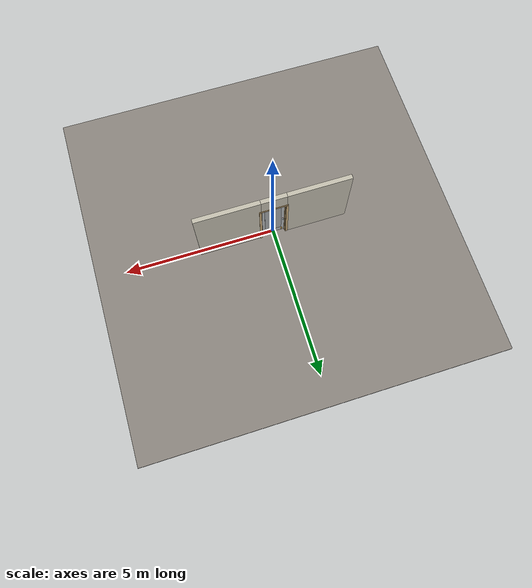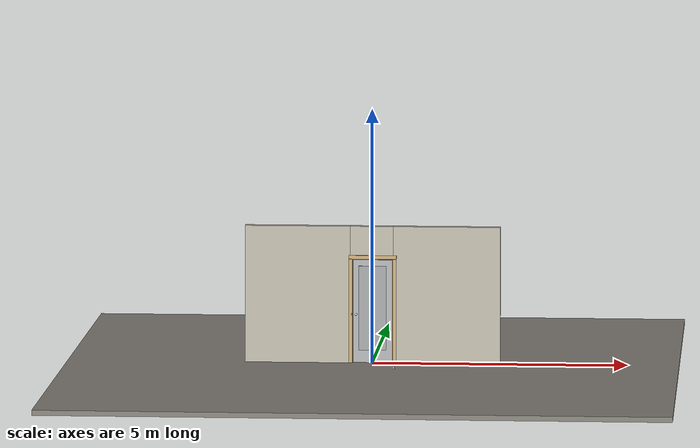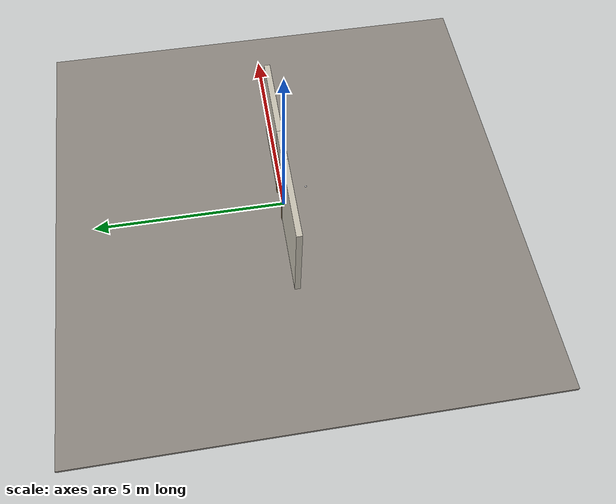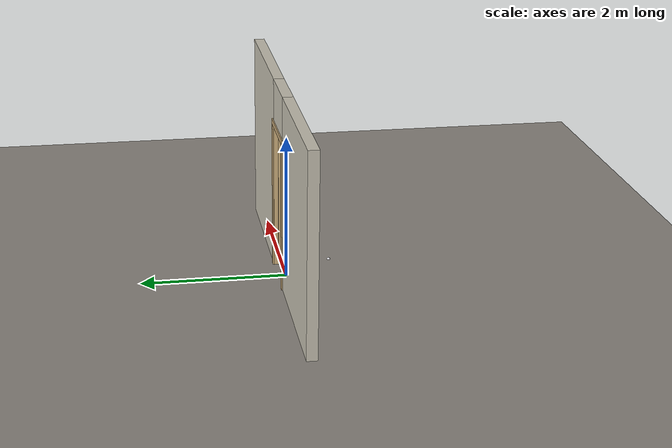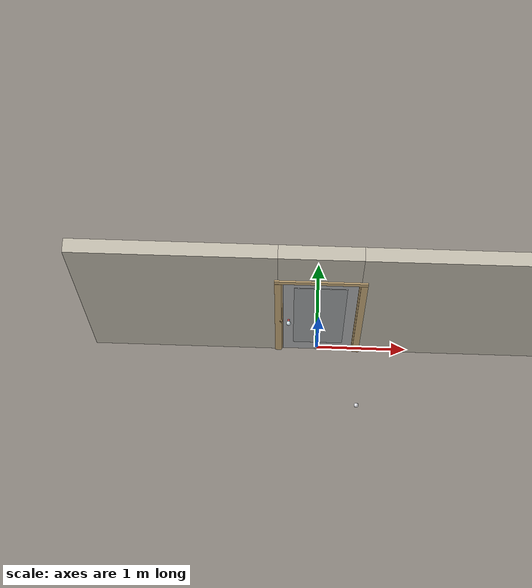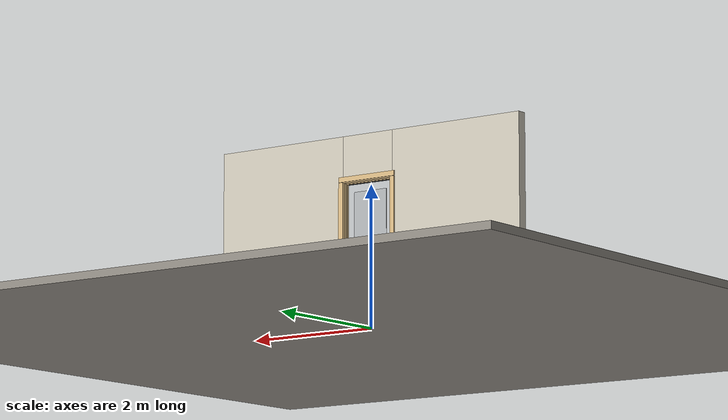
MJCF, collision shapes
<?xml version="1.0" ?>
<mujoco model="db0410_swing_single_full">
  <compiler angle="radian" meshdir="../../hardware" texturedir="../../textures" autolimits="true" inertiafromgeom="false"/>
  <option timestep="0.002" integrator="implicitfast" cone="elliptic" impratio="10" noslip_iterations="3">
    <flag multiccd="enable"/>
  </option>
  <size memory="16M"/>
  <default>
    <geom condim="4" solref="0.005 1" solimp="0.95 0.99 0.001"/>
    <joint solreflimit="0.005 1" solimplimit="0.95 0.99 0.001"/>
    <tendon solreflimit="0.005 1"/>
    <equality solref="0.002 1"/>
  </default>
  <visual>
    <headlight ambient="0.4 0.4 0.4" diffuse="0.7 0.7 0.7" specular="0.2 0.2 0.2"/>
    <quality shadowsize="4096"/>
    <map znear="0.01" zfar="60"/>
  </visual>
  <asset>
    <mesh name="hinge_2af0f4d6ca" file="hinge_2af0f4d6ca.obj"/>
    <mesh name="hinge_jamb_c0c0a62ada" file="hinge_jamb_c0c0a62ada.obj"/>
    <mesh name="knob_98a7916ed0" file="knob_98a7916ed0.obj"/>
    <material name="mat_floor" rgba="0.55 0.53 0.5 1" specular="0.2" shininess="0.15" reflectance="0"/>
    <material name="mat_wall" rgba="0.78 0.76 0.7 1" specular="0.2" shininess="0.1" reflectance="0"/>
    <material name="mat_leaf" rgba="0.72 0.73 0.74 1" specular="0.2" shininess="0.33" reflectance="0"/>
    <material name="mat_leaf_panel" rgba="0.662 0.672 0.681 1" specular="0.2" shininess="0.33" reflectance="0"/>
    <material name="mat_hinge" rgba="0.65 0.66 0.68 1" specular="0.74" shininess="0.5" reflectance="0.36"/>
    <material name="mat_op_glass_clear" rgba="0.85 0.92 0.95 0.25" specular="0.2" shininess="0.95" reflectance="0.1"/>
    <material name="mat_trim" rgba="0.85 0.66 0.3 1" specular="0.8" shininess="0.75" reflectance="0.4"/>
    <material name="mat_bolt" rgba="0.85 0.66 0.3 1" specular="0.8" shininess="0.75" reflectance="0.4"/>
    <material name="mat_frame" rgba="0.82 0.7 0.5 1" specular="0.2" shininess="0.45" reflectance="0"/>
    <material name="mat_seal" rgba="0.1 0.1 0.1 1" specular="0.2" shininess="0.1" reflectance="0"/>
    <material name="mat_kickdown" rgba="0.85 0.66 0.3 1" specular="0.8" shininess="0.75" reflectance="0.4"/>
    <material name="mat_kickdown_pad" rgba="0.92 0.92 0.9 1" specular="0.2" shininess="0.6" reflectance="0"/>
    <material name="mat_stop" rgba="0.9 0.9 0.92 1" specular="0.8" shininess="0.9" reflectance="0.4"/>
    <texture name="skybox" type="skybox" builtin="gradient" rgb1="0.6 0.7 0.85" rgb2="0.9 0.92 0.95" width="256" height="256"/>
  </asset>
  <worldbody>
    <light name="sun" pos="1.5 -2.5 4" dir="-0.3 0.5 -0.8" directional="true" diffuse="0.8 0.8 0.8" specular="0.3 0.3 0.3" castshadow="true"/>
    <light name="fill" pos="-1.5 2.5 3" dir="0.3 -0.5 -0.7" directional="true" diffuse="0.35 0.35 0.4" castshadow="false"/>
    <camera name="robot_view" pos="0 -2.498687 1.734312" xyaxes="1 0 0 0 0.26963 0.962964" fovy="52"/>
    <camera name="far_view" pos="0 2.585687 1.734312" xyaxes="-1 0 0 0 -0.26963 0.962964" fovy="52"/>
    <camera name="iso" pos="-1.932062 -2.091938 2.141063" xyaxes="0.741536 -0.670913 0 0.242917 0.268487 0.932151" fovy="46"/>
    <camera name="detail_handle" pos="-0.14 -0.867 1.245" xyaxes="0.97561 0.219512 0 -0.070934 0.315262 0.94635" fovy="38"/>
    <geom name="floor" type="box" size="6 6 0.05" pos="0 0 -0.05" material="mat_floor" group="0" contype="1" conaffinity="1" friction="0.8 0.005 0.0001" density="2400"/>
    <geom name="wall_left" type="box" size="1.033 0.0725 1.35" pos="-1.467 0.0435 1.35" material="mat_wall" group="0" contype="1" conaffinity="1" friction="0.6 0.005 0.0001" density="800"/>
    <geom name="wall_right" type="box" size="1.048 0.0725 1.35" pos="1.452 0.0435 1.35" material="mat_wall" group="0" contype="1" conaffinity="1" friction="0.6 0.005 0.0001" density="800"/>
    <geom name="wall_header" type="box" size="0.419 0.0725 0.303" pos="-0.015 0.0435 2.397" material="mat_wall" group="0" contype="1" conaffinity="1" friction="0.6 0.005 0.0001" density="800"/>
    <geom name="hinge_0_jamb" type="mesh" mesh="hinge_jamb_c0c0a62ada" pos="0.382 -0.029 0.259" quat="0 0 1 0" material="mat_hinge" group="1" contype="0" conaffinity="0" density="7850"/>
    <geom name="hinge_1_jamb" type="mesh" mesh="hinge_jamb_c0c0a62ada" pos="0.382 -0.029 1.025" quat="0 0 1 0" material="mat_hinge" group="1" contype="0" conaffinity="0" density="7850"/>
    <geom name="hinge_2_jamb" type="mesh" mesh="hinge_jamb_c0c0a62ada" pos="0.382 -0.029 1.861" quat="0 0 1 0" material="mat_hinge" group="1" contype="0" conaffinity="0" density="7850"/>
    <geom name="jamb_hinge" type="box" size="0.0095 0.0725 1.0225" pos="0.3945 0.0435 1.0225" material="mat_frame" group="0" contype="1" conaffinity="1" friction="0.6 0.005 0.0001" density="400"/>
    <geom name="strike_965_wall_n" type="box" size="0.0245 0.054075 0.0167" pos="-0.4095 0.061925 0.965" material="mat_frame" group="0" contype="1" conaffinity="1" friction="0.6 0.005 0.0001" density="400"/>
    <geom name="strike_965_wall_p" type="box" size="0.0245 0.008 0.0167" pos="-0.4095 -0.01585 0.965" material="mat_frame" group="0" contype="1" conaffinity="1" friction="0.6 0.005 0.0001" density="400"/>
    <geom name="strike_965_ramp" type="box" size="0.0245 0.01649 0.0167" pos="-0.414136 -0.028673 0.965" quat="0.977148 0 0 -0.212558" material="mat_frame" group="0" contype="1" conaffinity="1" friction="0.12 0.005 0.0001" density="400"/>
    <geom name="strike_965_back" type="box" size="0.01615 0.00785 0.0167" pos="-0.41785 0 0.965" material="mat_frame" group="0" contype="1" conaffinity="1" friction="0.6 0.005 0.0001" density="400"/>
    <geom name="jamb_strike_0" type="box" size="0.0245 0.0725 0.47415" pos="-0.4095 0.0435 0.47415" material="mat_frame" group="0" contype="1" conaffinity="1" friction="0.6 0.005 0.0001" density="400"/>
    <geom name="jamb_strike_1" type="box" size="0.0245 0.0725 0.53165" pos="-0.4095 0.0435 1.51335" material="mat_frame" group="0" contype="1" conaffinity="1" friction="0.6 0.005 0.0001" density="400"/>
    <geom name="jamb_head" type="box" size="0.419 0.0725 0.0095" pos="-0.015 0.0435 2.0545" material="mat_frame" group="0" contype="1" conaffinity="1" friction="0.6 0.005 0.0001" density="400"/>
    <geom name="head_stud" type="box" size="0.419 0.0725 0.015" pos="-0.015 0.0435 2.079" material="mat_wall" group="0" contype="1" conaffinity="1" friction="0.6 0.005 0.0001" density="500"/>
    <geom name="stop_hinge" type="box" size="0.0055 0.016 1.0225" pos="0.3795 0.0385 1.0225" material="mat_frame" group="0" contype="1" conaffinity="1" friction="0.6 0.005 0.0001" density="400"/>
    <geom name="stop_strike" type="box" size="0.0055 0.016 1.0225" pos="-0.3795 0.0385 1.0225" material="mat_frame" group="0" contype="1" conaffinity="1" friction="0.6 0.005 0.0001" density="400"/>
    <geom name="stop_head" type="box" size="0.385 0.016 0.0055" pos="0 0.0385 2.0395" material="mat_frame" group="0" contype="1" conaffinity="1" friction="0.6 0.005 0.0001" density="400"/>
    <geom name="seal_hinge" type="box" size="0.004 0.0015 1.0225" pos="0.382 0.0235 1.0225" material="mat_seal" group="1" contype="0" conaffinity="0" density="1100"/>
    <geom name="seal_strike" type="box" size="0.004 0.0015 1.0225" pos="-0.382 0.0235 1.0225" material="mat_seal" group="1" contype="0" conaffinity="0" density="1100"/>
    <geom name="seal_head" type="box" size="0.365 0.0015 0.008" pos="0 0.0235 2.033" material="mat_seal" group="1" contype="0" conaffinity="0" density="1100"/>
    <geom name="casing_l_n" type="box" size="0.035 0.008 1.032" pos="-0.434 -0.037 1.0225" material="mat_frame" group="2" contype="0" conaffinity="0" density="400"/>
    <geom name="casing_r_n" type="box" size="0.035 0.008 1.032" pos="0.434 -0.037 1.0225" material="mat_frame" group="2" contype="0" conaffinity="0" density="400"/>
    <geom name="casing_h_n" type="box" size="0.469 0.008 0.035" pos="0 -0.037 2.094" material="mat_frame" group="2" contype="0" conaffinity="0" density="400"/>
    <geom name="casing_l_p" type="box" size="0.035 0.008 1.032" pos="-0.434 0.124 1.0225" material="mat_frame" group="2" contype="0" conaffinity="0" density="400"/>
    <geom name="casing_r_p" type="box" size="0.035 0.008 1.032" pos="0.434 0.124 1.0225" material="mat_frame" group="2" contype="0" conaffinity="0" density="400"/>
    <geom name="casing_h_p" type="box" size="0.469 0.008 0.035" pos="0 0.124 2.094" material="mat_frame" group="2" contype="0" conaffinity="0" density="400"/>
    <geom name="floor_stop_dome" type="sphere" size="0.025" pos="0.458375 -0.672492 0" material="mat_stop" group="0" contype="1" conaffinity="1" friction="0.6 0.005 0.0001" density="7000"/>
    <site name="approach_point" pos="0 -1.5 0" quat="1 0 0 0" size="0.05" rgba="0.2 0.9 0.2 0.5" group="4"/>
    <site name="goal_point" pos="0 1.5 0" quat="1 0 0 0" size="0.05" rgba="0.2 0.9 0.2 0.5" group="4"/>
    <site name="door_plane_center" pos="0 0 1.0225" quat="1 0 0 0" size="0.02" rgba="0.2 0.9 0.2 0.5" group="4"/>
    <body name="leaf" pos="0.385 0 0">
      <inertial pos="-0.3877 0.000786 1.00377" mass="51.373454" quat="0.503992 -0.505854 -0.493006 -0.497041" diaginertia="2.572654469 18.222825973 20.775708539"/>
      <joint name="leaf_hinge" type="hinge" axis="0 0 1" pos="-0.003 -0.029 0" limited="true" range="0 1.658063" solreflimit="0.02 1" damping="0.173726" frictionloss="1.459348" armature="0.02"/>
      <geom name="leaf_slab" type="box" size="0.381 0.022 1.016" pos="-0.384 0 1.025" material="mat_leaf" group="0" contype="1" conaffinity="1" friction="0.4 0.005 0.0001" density="1"/>
      <geom name="leaf_panel_0_n" type="box" size="0.271 0.003 0.83344" pos="-0.384 -0.025 1.08596" material="mat_leaf_panel" group="1" contype="0" conaffinity="0" density="1"/>
      <geom name="leaf_panel_0_p" type="box" size="0.271 0.003 0.83344" pos="-0.384 0.025 1.08596" material="mat_leaf_panel" group="1" contype="0" conaffinity="0" density="1"/>
      <geom name="hinge_0" type="mesh" mesh="hinge_2af0f4d6ca" pos="-0.003 -0.029 0.259" quat="0 0 1 0" material="mat_hinge" group="1" contype="0" conaffinity="0" density="7850"/>
      <geom name="hinge_1" type="mesh" mesh="hinge_2af0f4d6ca" pos="-0.003 -0.029 1.025" quat="0 0 1 0" material="mat_hinge" group="1" contype="0" conaffinity="0" density="7850"/>
      <geom name="hinge_2" type="mesh" mesh="hinge_2af0f4d6ca" pos="-0.003 -0.029 1.861" quat="0 0 1 0" material="mat_hinge" group="1" contype="0" conaffinity="0" density="7850"/>
      <geom name="leaf_latch_bolt_faceplate" type="box" size="0.0006 0.01235 0.0267" pos="-0.7644 0 0.965" material="mat_bolt" group="1" contype="0" conaffinity="0" density="8500"/>
      <geom name="kickdown_housing" type="box" size="0.022 0.016 0.045" pos="-0.665 0.038 0.169" material="mat_kickdown" group="2" contype="0" conaffinity="0" density="8500"/>
      <geom name="kickdown_arm" type="box" size="0.012 0.006 0.045" pos="-0.665 0.034 0.104" material="mat_kickdown" group="2" contype="0" conaffinity="0" density="8500"/>
      <geom name="kickdown_pad" type="cylinder" size="0.014 0.006" pos="-0.665 0.034 0.061" material="mat_kickdown_pad" group="2" contype="0" conaffinity="0" density="1200"/>
      <site name="leaf_edge_mid" pos="-0.765 0 1.016" quat="1 0 0 0" size="0.02" rgba="0.2 0.9 0.2 0.5" group="4"/>
      <body name="leaf_handle" pos="-0.705 0 0.965">
        <inertial pos="0 0 0" mass="0.971799" quat="0.5 0.5 0.5 0.5" diaginertia="0.000215316 0.003456691 0.003456691"/>
        <joint name="leaf_handle_hinge" type="hinge" axis="0 1 0" limited="true" range="0 0.8" damping="0.119589" frictionloss="0.032" stiffness="0.35" springref="-0.428571" armature="0.01"/>
        <geom name="leaf_handle_spindle" type="cylinder" size="0.006 0.03" pos="0 0 0" quat="0.707107 -0.707107 0 0" material="mat_op_glass_clear" group="1" contype="0" conaffinity="0" density="7850"/>
        <geom name="leaf_handle_knob_n" type="mesh" mesh="knob_98a7916ed0" pos="0 -0.022 0" quat="0 0 -0.707107 0.707107" material="mat_op_glass_clear" group="1" contype="0" conaffinity="0" density="3000"/>
        <geom name="leaf_handle_knob_col_n" type="sphere" size="0.0234" pos="0 -0.067 0" material="mat_op_glass_clear" group="0" contype="1" conaffinity="1" friction="0.9 0.01 0.0001" density="3000"/>
        <geom name="leaf_handle_knob_neck_n" type="cylinder" size="0.011 0.012" pos="0 -0.034 0" quat="0.707107 -0.707107 0 0" material="mat_op_glass_clear" group="3" contype="1" conaffinity="1" rgba="0.8 0.3 0.3 0.25" friction="0.6 0.005 0.0001" density="3000"/>
        <geom name="leaf_handle_knob_p" type="mesh" mesh="knob_98a7916ed0" pos="0 0.022 0" quat="0 0 0.707107 0.707107" material="mat_op_glass_clear" group="1" contype="0" conaffinity="0" density="3000"/>
        <geom name="leaf_handle_knob_col_p" type="sphere" size="0.0234" pos="0 0.067 0" material="mat_op_glass_clear" group="0" contype="1" conaffinity="1" friction="0.9 0.01 0.0001" density="3000"/>
        <geom name="leaf_handle_knob_neck_p" type="cylinder" size="0.011 0.012" pos="0 0.034 0" quat="0.707107 -0.707107 0 0" material="mat_op_glass_clear" group="3" contype="1" conaffinity="1" rgba="0.8 0.3 0.3 0.25" friction="0.6 0.005 0.0001" density="3000"/>
        <site name="leaf_handle_grip_n" pos="0 -0.067 0" quat="1 0 0 0" size="0.012" rgba="0.2 0.9 0.2 0.5" group="4"/>
        <site name="leaf_handle_grip_p" pos="0 0.067 0" quat="1 0 0 0" size="0.012" rgba="0.2 0.9 0.2 0.5" group="4"/>
      </body>
      <body name="leaf_latch_bolt" pos="-0.765 0 0.965">
        <inertial pos="0.00865 0 0" mass="0.041419" quat="0.92388 0.382683 0 0" diaginertia="0.000000798 0.000005598 0.000005598"/>
        <joint name="leaf_latch_bolt_slide" type="slide" axis="1 0 0" limited="true" range="0 0.0127" damping="2" frictionloss="0.3" stiffness="300" springref="-0.008333" armature="0.1"/>
        <geom name="leaf_latch_bolt_capsule" type="capsule" size="0.00635 0.015" pos="0.00865 0 0" quat="0.707107 0 -0.707107 0" material="mat_bolt" group="0" contype="1" conaffinity="1" friction="0.2 0.005 0.0001" density="8500"/>
      </body>
    </body>
  </worldbody>
  <tendon>
    <fixed name="leaf_latch_bolt_coupling" limited="true" range="0 10">
      <joint joint="leaf_latch_bolt_slide" coef="1"/>
      <joint joint="leaf_handle_hinge" coef="-0.019538"/>
    </fixed>
  </tendon>
  <sensor>
    <jointpos name="leaf_hinge_pos" joint="leaf_hinge"/>
    <jointvel name="leaf_hinge_vel" joint="leaf_hinge"/>
    <jointpos name="leaf_handle_hinge_pos" joint="leaf_handle_hinge"/>
    <jointvel name="leaf_handle_hinge_vel" joint="leaf_handle_hinge"/>
    <jointpos name="leaf_latch_bolt_slide_pos" joint="leaf_latch_bolt_slide"/>
    <jointvel name="leaf_latch_bolt_slide_vel" joint="leaf_latch_bolt_slide"/>
  </sensor>
</mujoco>
